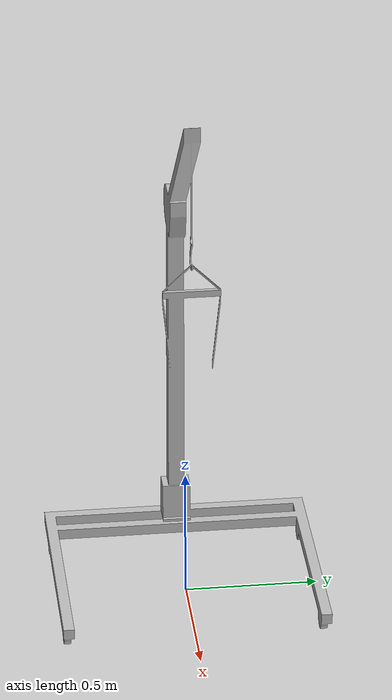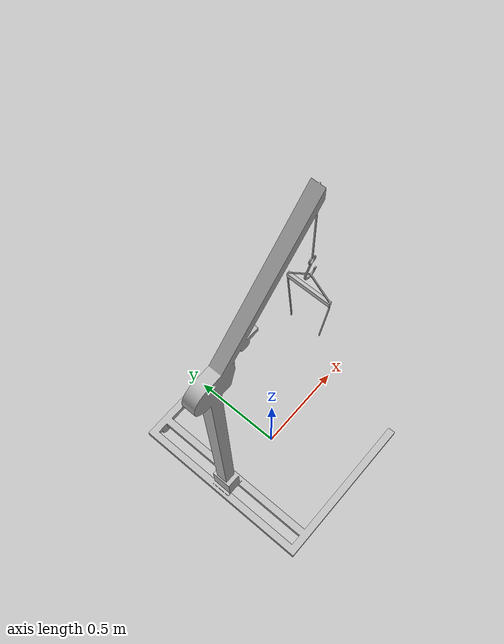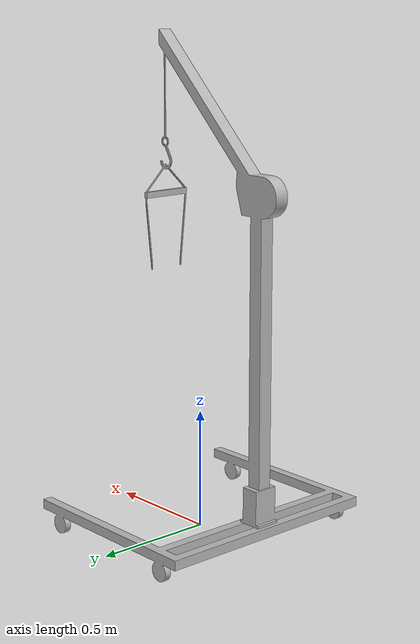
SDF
<?xml version='1.0' encoding='utf-8'?>
<sdf version="1.10">
    <model name="Crane">
        <static>true</static>
        <link name="body">
            <pose>0 0 0 0 0 0</pose>
            <visual name="visual">
                <geometry>
                    <mesh>
                        <uri>model://Crane/meshes/Crane2.obj</uri>
                    </mesh>
                </geometry>
            </visual>
            <collision name="collision">
                <geometry>
                    <mesh>
                        <uri>model://Crane/meshes/Crane2.obj</uri>
                    </mesh>
                </geometry>
            </collision>
        </link>
    </model>
</sdf>
